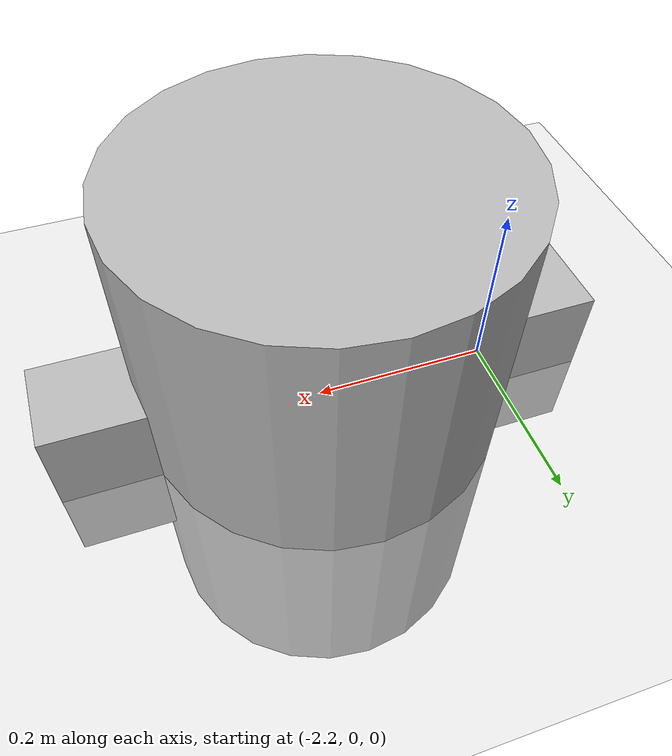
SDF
<?xml version="1.0" ?>

<sdf version="1.6">
    <world name="default">

    <include>
           <uri>model://sun</uri>
    </include>

       <!-- A ground plane -->
    <include>
        <uri>model://ground_plane</uri>
    </include>

    <include>
        <uri>model://robot</uri>
        <pose>-2.0 0 0 0 0 0</pose>
    </include>

    </world>

</sdf>

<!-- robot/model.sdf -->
<sdf version='1.6'>
  <model name='robot'>
    <link name='base_link'>
      <pose frame=''>0 0 0 0 -0 0</pose>
      <inertial>
        <pose frame=''>0 0 0 0 -0 0</pose>
        <mass>0.5</mass>
        <inertia>
          <ixx>1</ixx>
          <ixy>0</ixy>
          <ixz>0</ixz>
          <iyy>1</iyy>
          <iyz>0</iyz>
          <izz>1</izz>
        </inertia>
      </inertial>
      <collision name='base_link_collision'>
        <pose frame=''>0 0 0 0 -0 0</pose>
        <geometry>
          <cylinder>
            <length>0.6</length>
            <radius>0.2</radius>
          </cylinder>
        </geometry>
      </collision>
      <visual name='base_link_visual'>
        <pose frame=''>0 0 0 0 -0 0</pose>
        <geometry>
          <cylinder>
            <length>0.6</length>
            <radius>0.2</radius>
          </cylinder>
        </geometry>
      </visual>
    </link>
    <link name='right_leg'>
      <pose frame=''>0 0 0 0 -0 0</pose>
      <inertial>
        <pose frame=''>0 0 0 0 -0 0</pose>
        <mass>0.2</mass>
        <inertia>
          <ixx>1</ixx>
          <ixy>0</ixy>
          <ixz>0</ixz>
          <iyy>1</iyy>
          <iyz>0</iyz>
          <izz>1</izz>
        </inertia>
      </inertial>
      <collision name='right_leg_collision'>
        <pose frame=''>0 0 0 0 -0 0</pose>
        <geometry>
          <box>
            <size>0.6 0.1 0.2</size>
          </box>
        </geometry>
      </collision>
      <visual name='right_leg_visual'>
        <pose frame=''>0 0 0 0 -0 0</pose>
        <geometry>
          <box>
            <size>0.6 0.1 0.2</size>
          </box>
        </geometry>
      </visual>
    </link>
    <joint name='base_to_right_leg' type='revolute'>
      <child>right_leg</child>
      <parent>base_link</parent>
      <axis>
        <xyz>1 0 0</xyz>
        <limit>
          <lower>-1e+16</lower>
          <upper>1e+16</upper>
        </limit>
        <dynamics>
          <spring_reference>0</spring_reference>
          <spring_stiffness>0</spring_stiffness>
        </dynamics>
        <use_parent_model_frame>1</use_parent_model_frame>
      </axis>
    </joint>
  </model>
</sdf>
